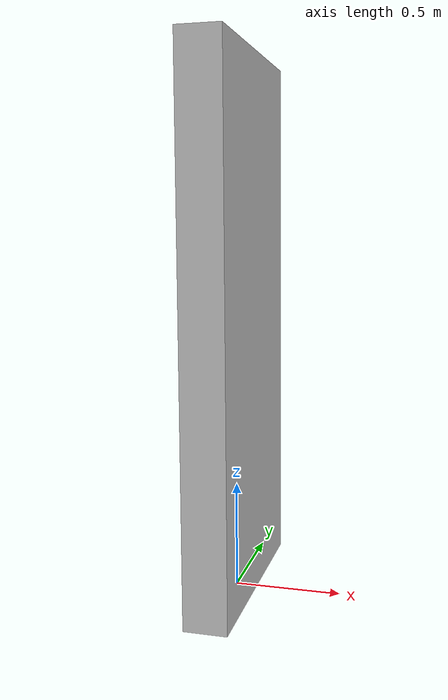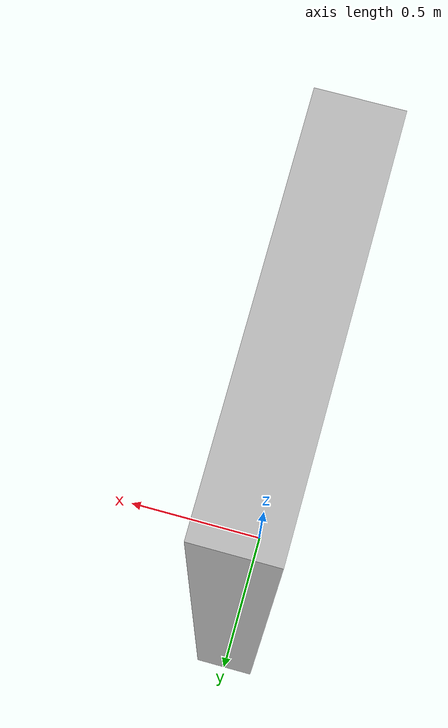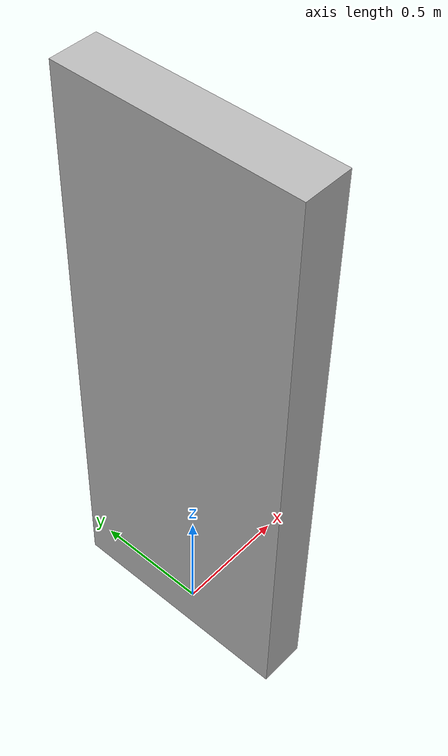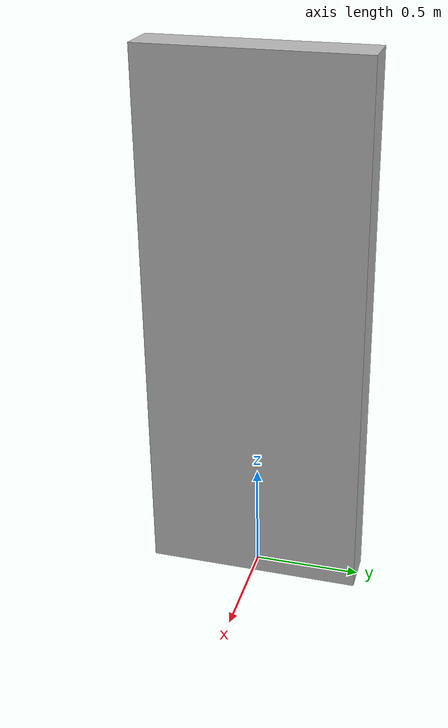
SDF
<?xml version="1.0" ?>
<sdf version="1.5">
  <model name="concrete">
    <static>1</static>
    <link name="link">
      <pose>0 0 1.25 0 0 0</pose>

      <visual name="visual">
        <geometry>
          <box>
            <size>0.2 1.0 2.5</size>
          </box>
        </geometry>
      </visual>

    </link>

    <plugin name="concrete" filename="libgazebo_rad_obstacle.so">
      <depth>0.2</depth>
      <width>1.0</width>
      <height>2.5</height>
    </plugin>

  </model>
</sdf>
